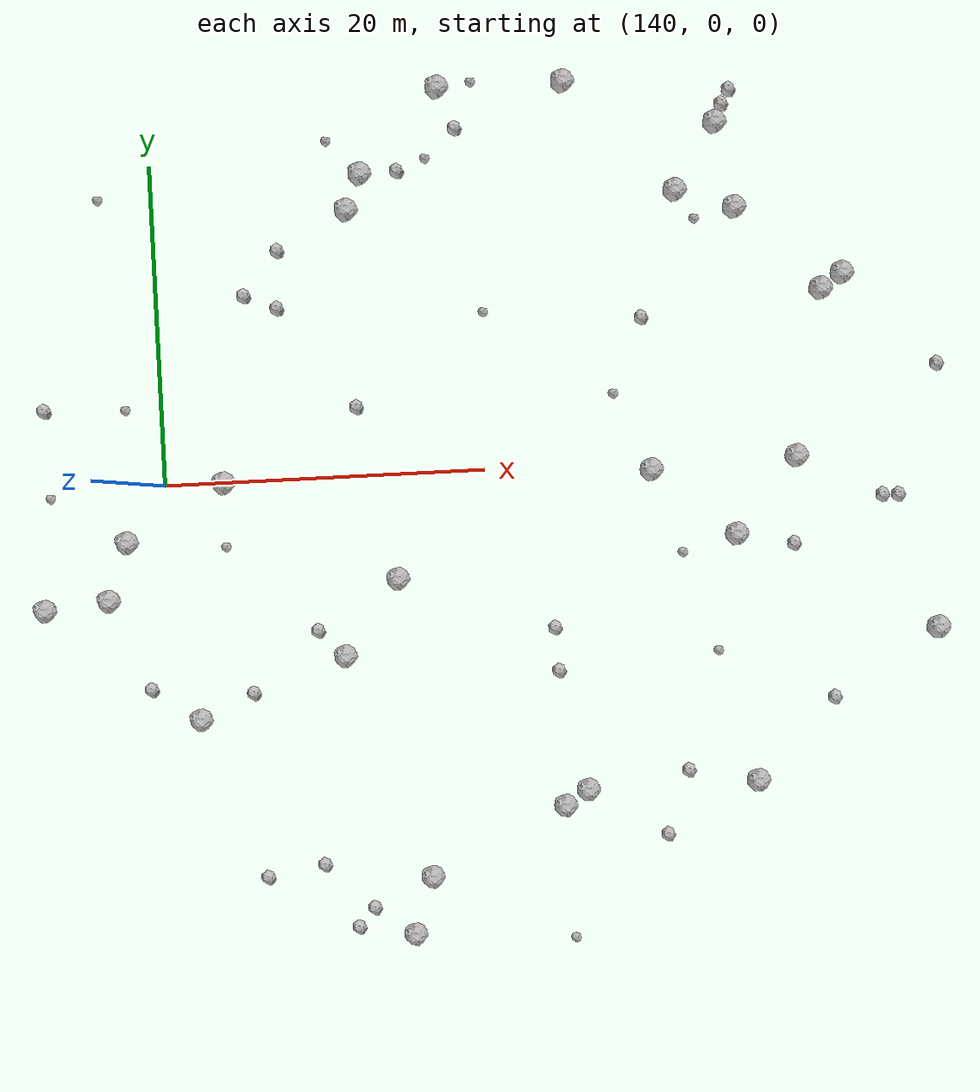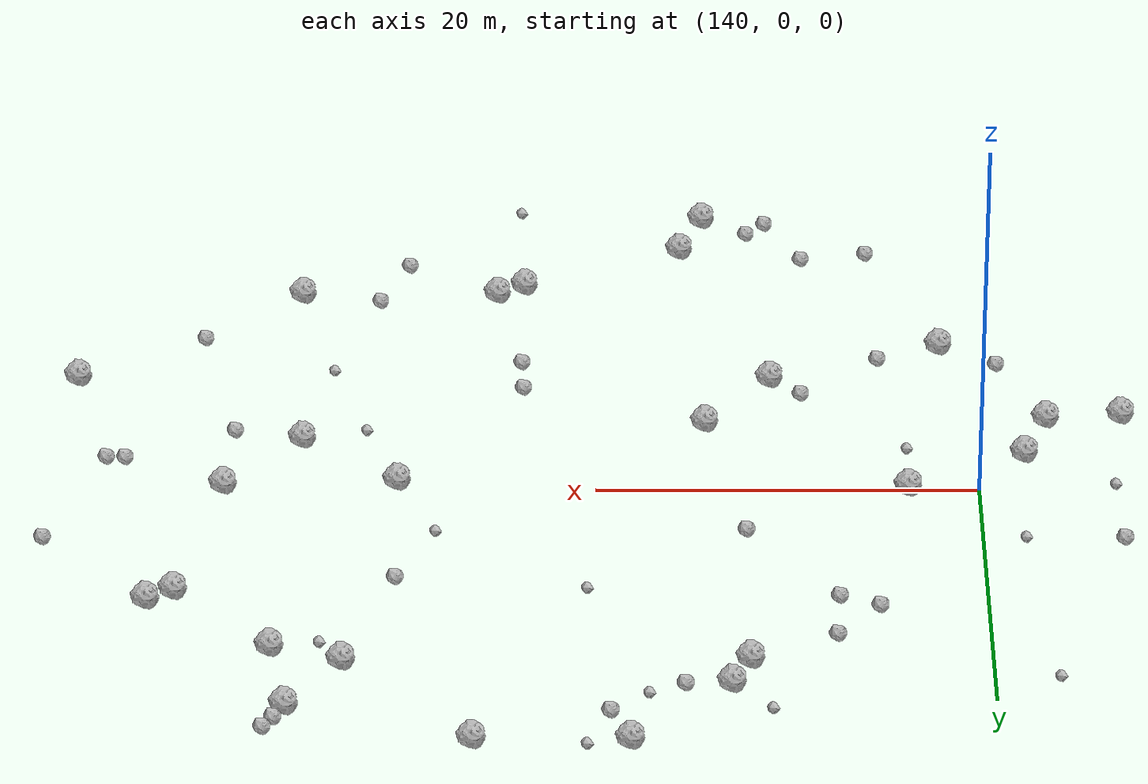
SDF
<sdf version="1.6">
 <world name="default">
  <include><uri>model://sun</uri></include>
  <model name="rock1_4_2">
   <include><uri>model://rock1</uri><pose>154.25594796743076 -28.656645661068392 0.5 0 0 0</pose></include>
  </model>
  <model name="rock1_4_3">
   <include><uri>model://rock1</uri><pose>176.06150199017756 -20.1663658004977 0.5 0 0 0</pose></include>
  </model>
  <model name="rock1_4_4">
   <include><uri>model://rock1</uri><pose>179.46406515699448 -0.10514720756803797 0.5 0 0 0</pose></include>
  </model>
  <model name="rock1_4_5">
   <include><uri>model://rock1</uri><pose>141.61191929988246 -14.685527690537082 0.5 0 0 0</pose></include>
  </model>
  <model name="rock1_4_6">
   <include><uri>model://rock1</uri><pose>176.36896193284818 15.565196746767569 0.5 0 0 0</pose></include>
  </model>
  <model name="rock1_4_7">
   <include><uri>model://rock1</uri><pose>175.41985447676188 20.913440333264475 0.5 0 0 0</pose></include>
  </model>
  <model name="rock1_4_8">
   <include><uri>model://rock1</uri><pose>170.39598946888395 -0.5196165701646862 0.5 0 0 0</pose></include>
  </model>
  <model name="rock1_4_9">
   <include><uri>model://rock1</uri><pose>182.8578577703135 11.131637870797064 0.5 0 0 0</pose></include>
  </model>
  <model name="rock1_4_10">
   <include><uri>model://rock1</uri><pose>172.72918794636922 16.807951502774735 0.5 0 0 0</pose></include>
  </model>
  <model name="rock1_4_11">
   <include><uri>model://rock1</uri><pose>155.5054100196505 -25.15639283473437 0.5 0 0 0</pose></include>
  </model>
  <model name="rock1_4_12">
   <include><uri>model://rock1</uri><pose>181.498929084764 10.234696700134364 0.5 0 0 0</pose></include>
  </model>
  <model name="rock1_4_13">
   <include><uri>model://rock1</uri><pose>152.20699429220764 16.59238303293015 0.5 0 0 0</pose></include>
  </model>
  <model name="rock1_4_14">
   <include><uri>model://rock1</uri><pose>153.17004115725905 18.807211209438464 0.5 0 0 0</pose></include>
  </model>
  <model name="rock1_4_15">
   <include><uri>model://rock1</uri><pose>175.5060948183922 -4.783483720539131 0.5 0 0 0</pose></include>
  </model>
  <model name="rock1_4_16">
   <include><uri>model://rock1</uri><pose>132.2308156522525 -7.424111175123741 0.5 0 0 0</pose></include>
  </model>
  <model name="rock1_4_17">
   <include><uri>model://rock1</uri><pose>187.75077734414828 -11.20866643486535 0.5 0 0 0</pose></include>
  </model>
  <model name="rock1_4_18">
   <include><uri>model://rock1</uri><pose>166.07217866484388 23.92400480619692 0.5 0 0 0</pose></include>
  </model>
  <model name="rock1_4_19">
   <include><uri>model://rock1</uri><pose>154.2866944513238 -6.520388951076988 0.5 0 0 0</pose></include>
  </model>
  <model name="rock1_4_20">
   <include><uri>model://rock1</uri><pose>158.23651069176032 23.942815861402984 0.5 0 0 0</pose></include>
  </model>
  <model name="rock1_4_21">
   <include><uri>model://rock1</uri><pose>165.45131510847318 -20.22653280729836 0.5 0 0 0</pose></include>
  </model>
  <model name="rock1_4_22">
   <include><uri>model://rock1</uri><pose>137.52335910492243 -3.437643345174248 0.5 0 0 0</pose></include>
  </model>
  <model name="rock1_4_23">
   <include><uri>model://rock1</uri><pose>143.74177745667203 -0.016458025422767975 0.5 0 0 0</pose></include>
  </model>
  <model name="rock1_4_24">
   <include><uri>model://rock1</uri><pose>136.2246747011954 -7.013530225714874 0.5 0 0 0</pose></include>
  </model>
  <model name="rock1_4_25">
   <include><uri>model://rock1</uri><pose>150.77933090002907 -11.161324775351261 0.5 0 0 0</pose></include>
  </model>
  <model name="rock1_4_26">
   <include><uri>model://rock1</uri><pose>163.99000310630987 -21.145321626346536 0.5 0 0 0</pose></include>
  </model>
  <model name="rock2_4_0">
   <include><uri>model://rock2</uri><pose>159.20370919274563 21.371479309138174 0.3 0 0 0</pose></include>
  </model>
  <model name="rock2_4_1">
   <include><uri>model://rock2</uri><pose>179.06456390643362 -5.56747492339176 0.3 0 0 0</pose></include>
  </model>
  <model name="rock2_4_2">
   <include><uri>model://rock2</uri><pose>152.21384170820235 4.301310366104538 0.3 0 0 0</pose></include>
  </model>
  <model name="rock2_4_3">
   <include><uri>model://rock2</uri><pose>172.87703668288506 16.82922251942032 0.3 0 0 0</pose></include>
  </model>
  <model name="rock2_4_4">
   <include><uri>model://rock2</uri><pose>155.46617517973505 18.892378767254023 0.3 0 0 0</pose></include>
  </model>
  <model name="rock2_4_5">
   <include><uri>model://rock2</uri><pose>181.11992888676477 -15.285004479302557 0.3 0 0 0</pose></include>
  </model>
  <model name="rock2_4_6">
   <include><uri>model://rock2</uri><pose>144.93356278010236 -13.200609213595268 0.3 0 0 0</pose></include>
  </model>
  <model name="rock2_4_7">
   <include><uri>model://rock2</uri><pose>148.81538152156747 -24.112564333981048 0.3 0 0 0</pose></include>
  </model>
  <model name="rock2_4_8">
   <include><uri>model://rock2</uri><pose>176.3979210649394 22.920379991665683 0.3 0 0 0</pose></include>
  </model>
  <model name="rock2_4_9">
   <include><uri>model://rock2</uri><pose>171.7923122318668 -19.3732868962789 0.3 0 0 0</pose></include>
  </model>
  <model name="rock2_4_10">
   <include><uri>model://rock2</uri><pose>151.7839838860409 -26.943293868973125 0.3 0 0 0</pose></include>
  </model>
  <model name="rock2_4_11">
   <include><uri>model://rock2</uri><pose>147.57227861710479 10.69609201827177 0.3 0 0 0</pose></include>
  </model>
  <model name="rock2_4_12">
   <include><uri>model://rock2</uri><pose>175.89791806620582 22.04536764506971 0.3 0 0 0</pose></include>
  </model>
  <model name="rock2_4_13">
   <include><uri>model://rock2</uri><pose>147.7641062299789 14.289396298082153 0.3 0 0 0</pose></include>
  </model>
  <model name="rock2_4_14">
   <include><uri>model://rock2</uri><pose>149.1304277641972 -9.50937358279408 0.3 0 0 0</pose></include>
  </model>
  <model name="rock2_4_15">
   <include><uri>model://rock2</uri><pose>164.01524578924196 -12.764837673607264 0.3 0 0 0</pose></include>
  </model>
  <model name="rock2_4_16">
   <include><uri>model://rock2</uri><pose>163.89791302018756 -10.077163251911198 0.3 0 0 0</pose></include>
  </model>
  <model name="rock2_4_17">
   <include><uri>model://rock2</uri><pose>184.72135648501535 -2.8132385235184465 0.3 0 0 0</pose></include>
  </model>
  <model name="rock2_4_18">
   <include><uri>model://rock2</uri><pose>188.4966851690219 5.188964632898305 0.3 0 0 0</pose></include>
  </model>
  <model name="rock2_4_19">
   <include><uri>model://rock2</uri><pose>170.28956117270212 -23.29280505149668 0.3 0 0 0</pose></include>
  </model>
  <model name="rock2_4_20">
   <include><uri>model://rock2</uri><pose>145.5352163322026 11.575547838332305 0.3 0 0 0</pose></include>
  </model>
  <model name="rock2_4_21">
   <include><uri>model://rock2</uri><pose>132.727838996969 5.017924481033958 0.3 0 0 0</pose></include>
  </model>
  <model name="rock2_4_22">
   <include><uri>model://rock2</uri><pose>150.75440786951424 -28.09761746518128 0.3 0 0 0</pose></include>
  </model>
  <model name="rock2_4_23">
   <include><uri>model://rock2</uri><pose>145.2441693873549 -24.72470979626022 0.3 0 0 0</pose></include>
  </model>
  <model name="rock2_4_24">
   <include><uri>model://rock2</uri><pose>138.57549370060576 -12.67505993463639 0.3 0 0 0</pose></include>
  </model>
  <model name="rock2_4_25">
   <include><uri>model://rock2</uri><pose>185.7108517027588 -2.847126454609608 0.3 0 0 0</pose></include>
  </model>
  <model name="rock2_4_26">
   <include><uri>model://rock2</uri><pose>170.23163821416856 8.991786444899965 0.3 0 0 0</pose></include>
  </model>
  <model name="rock3_4_0">
   <include><uri>model://rock3</uri><pose>173.99869091283662 -12.037645805753193 0.2 0 0 0</pose></include>
  </model>
  <model name="rock3_4_1">
   <include><uri>model://rock3</uri><pose>168.2379354043658 4.316303806516665 0.2 0 0 0</pose></include>
  </model>
  <model name="rock3_4_2">
   <include><uri>model://rock3</uri><pose>157.238203739614 19.58189935983261 0.2 0 0 0</pose></include>
  </model>
  <model name="rock3_4_3">
   <include><uri>model://rock3</uri><pose>151.1112857279696 20.966264500372766 0.2 0 0 0</pose></include>
  </model>
  <model name="rock3_4_4">
   <include><uri>model://rock3</uri><pose>160.3224116011244 24.194790479196165 0.2 0 0 0</pose></include>
  </model>
  <model name="rock3_4_5">
   <include><uri>model://rock3</uri><pose>132.83378964621085 -0.4881954814955307 0.2 0 0 0</pose></include>
  </model>
  <model name="rock3_4_6">
   <include><uri>model://rock3</uri><pose>164.1859078313925 -29.47832099749301 0.2 0 0 0</pose></include>
  </model>
  <model name="rock3_4_7">
   <include><uri>model://rock3</uri><pose>173.8318595575823 14.985874839772137 0.2 0 0 0</pose></include>
  </model>
  <model name="rock3_4_8">
   <include><uri>model://rock3</uri><pose>172.07817460789934 -5.798138451072148 0.2 0 0 0</pose></include>
  </model>
  <model name="rock3_4_9">
   <include><uri>model://rock3</uri><pose>137.76945585121845 4.795599891145535 0.2 0 0 0</pose></include>
  </model>
  <model name="rock3_4_10">
   <include><uri>model://rock3</uri><pose>143.63026070409293 -4.037376892779601 0.2 0 0 0</pose></include>
  </model>
  <model name="rock3_4_11">
   <include><uri>model://rock3</uri><pose>136.69469878747748 17.987789542496053 0.2 0 0 0</pose></include>
  </model>
  <model name="rock3_4_12">
   <include><uri>model://rock3</uri><pose>160.38182290565587 9.816082638782099 0.2 0 0 0</pose></include>
  </model>
 </world>
</sdf>
